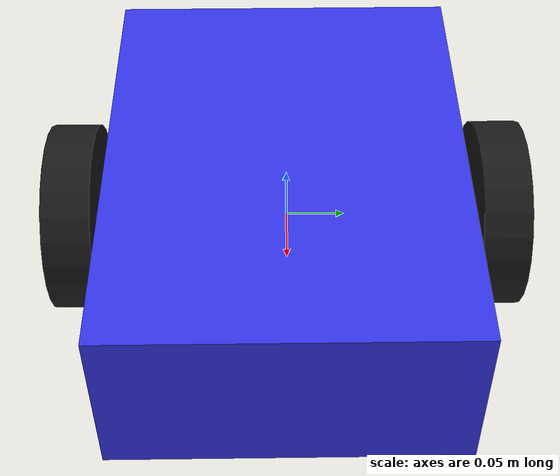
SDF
<?xml version="1.0"?>
<sdf version="1.10">
  <model name="diff_drive_bot">

    <!-- Chassis -->
    <link name="base_link">
      <inertial>
        <mass>5.0</mass>
        <inertia>
          <ixx>0.1</ixx><iyy>0.1</iyy><izz>0.1</izz>
          <ixy>0</ixy><ixz>0</ixz><iyz>0</iyz>
        </inertia>
      </inertial>
      <collision name="c">
        <geometry><box><size>0.4 0.3 0.15</size></box></geometry>
      </collision>
      <visual name="v">
        <geometry><box><size>0.4 0.3 0.15</size></box></geometry>
        <material>
          <ambient>0.1 0.1 0.8 1</ambient>
          <diffuse>0.2 0.2 0.9 1</diffuse>
        </material>
      </visual>

      <!-- IMU sensor -->
      <sensor name="imu_sensor" type="imu">
        <always_on>true</always_on>
        <update_rate>100</update_rate>
        <topic>imu</topic>
        <gz_frame_id>base_link</gz_frame_id>
        <imu>
          <angular_velocity>
            <x><noise type="gaussian"><mean>0</mean><stddev>0.01</stddev></noise></x>
            <y><noise type="gaussian"><mean>0</mean><stddev>0.01</stddev></noise></y>
            <z><noise type="gaussian"><mean>0</mean><stddev>0.01</stddev></noise></z>
          </angular_velocity>
          <linear_acceleration>
            <x><noise type="gaussian"><mean>0</mean><stddev>0.05</stddev></noise></x>
            <y><noise type="gaussian"><mean>0</mean><stddev>0.05</stddev></noise></y>
            <z><noise type="gaussian"><mean>0</mean><stddev>0.05</stddev></noise></z>
          </linear_acceleration>
        </imu>
      </sensor>

      <!-- 2D LiDAR -->
      <sensor name="lidar" type="gpu_lidar">
        <pose>0.15 0 0.15 0 0 0</pose>
        <topic>scan</topic>
        <gz_frame_id>base_link</gz_frame_id>
        <update_rate>10</update_rate>
        <always_on>true</always_on>
        <visualize>true</visualize>
        <lidar>
          <scan>
            <horizontal>
              <samples>360</samples>
              <resolution>1</resolution>
              <min_angle>-3.14159</min_angle>
              <max_angle> 3.14159</max_angle>
            </horizontal>
          </scan>
          <range>
            <min>0.10</min>
            <max>10.0</max>
            <resolution>0.01</resolution>
          </range>
          <noise><type>gaussian</type><mean>0</mean><stddev>0.01</stddev></noise>
        </lidar>
      </sensor>
    </link>

    <!-- Wheels -->
    <link name="left_wheel">
      <pose>0 0.18 0 -1.5708 0 0</pose>
      <inertial><mass>0.2</mass>
        <inertia><ixx>0.001</ixx><iyy>0.001</iyy><izz>0.001</izz>
        <ixy>0</ixy><ixz>0</ixz><iyz>0</iyz></inertia></inertial>
      <collision name="c"><geometry><cylinder><radius>0.08</radius><length>0.04</length></cylinder></geometry></collision>
      <visual name="v"><geometry><cylinder><radius>0.08</radius><length>0.04</length></cylinder></geometry>
      <material><ambient>0.1 0.1 0.1 1</ambient></material></visual>
    </link>

    <link name="right_wheel">
      <pose>0 -0.18 0 -1.5708 0 0</pose>
      <inertial><mass>0.2</mass>
        <inertia><ixx>0.001</ixx><iyy>0.001</iyy><izz>0.001</izz>
        <ixy>0</ixy><ixz>0</ixz><iyz>0</iyz></inertia></inertial>
      <collision name="c"><geometry><cylinder><radius>0.08</radius><length>0.04</length></cylinder></geometry></collision>
      <visual name="v"><geometry><cylinder><radius>0.08</radius><length>0.04</length></cylinder></geometry>
      <material><ambient>0.1 0.1 0.1 1</ambient></material></visual>
    </link>

    <link name="caster">
      <pose>-0.15 0 -0.03 0 0 0</pose>
      <inertial><mass>0.05</mass>
        <inertia><ixx>0.0001</ixx><iyy>0.0001</iyy><izz>0.0001</izz>
        <ixy>0</ixy><ixz>0</ixz><iyz>0</iyz></inertia></inertial>
      <collision name="c"><geometry><sphere><radius>0.04</radius></sphere></geometry>
        <surface><friction><ode><mu>0</mu><mu2>0</mu2></ode></friction></surface></collision>
      <visual name="v"><geometry><sphere><radius>0.04</radius></sphere></geometry></visual>
    </link>

    <joint name="left_wheel_joint" type="revolute">
      <parent>base_link</parent><child>left_wheel</child>
      <axis>
        <xyz>0 0 1</xyz>
        <dynamics><damping>0.01</damping></dynamics>
      </axis>
    </joint>
    <joint name="right_wheel_joint" type="revolute">
      <parent>base_link</parent><child>right_wheel</child>
      <axis>
        <xyz>0 0 1</xyz>
        <dynamics><damping>0.01</damping></dynamics>
      </axis>
    </joint>
    <joint name="caster_joint" type="ball">
      <parent>base_link</parent><child>caster</child>
    </joint>

    <!-- Differential drive plugin: subscribes /cmd_vel, publishes /odom -->
    <plugin filename="gz-sim-diff-drive-system" name="gz::sim::systems::DiffDrive">
      <left_joint>left_wheel_joint</left_joint>
      <right_joint>right_wheel_joint</right_joint>
      <wheel_separation>0.36</wheel_separation>
      <wheel_radius>0.08</wheel_radius>
      <odom_publish_frequency>50</odom_publish_frequency>
      <topic>cmd_vel</topic>
      <odom_topic>odom</odom_topic>
      <frame_id>odom</frame_id>
      <child_frame_id>base_link</child_frame_id>
      <!-- Route the encoder TF to a dummy topic; EKF owns the real /tf. -->
      <tf_topic>/diff_drive/tf_unused</tf_topic>
    </plugin>

    <plugin filename="gz-sim-pose-publisher-system" name="gz::sim::systems::PosePublisher">
      <publish_link_pose>true</publish_link_pose>
      <publish_collision_pose>false</publish_collision_pose>
      <publish_visual_pose>false</publish_visual_pose>
      <publish_nested_model_pose>false</publish_nested_model_pose>
      <use_pose_vector_msg>false</use_pose_vector_msg>
      <update_frequency>50</update_frequency>
    </plugin>

    <plugin filename="gz-sim-joint-state-publisher-system"
            name="gz::sim::systems::JointStatePublisher"/>

  </model>
</sdf>
